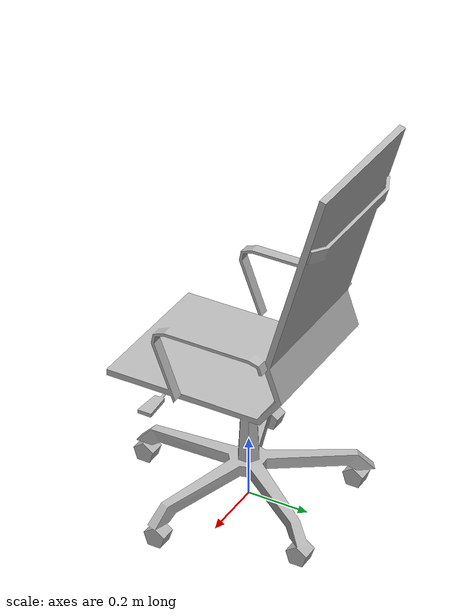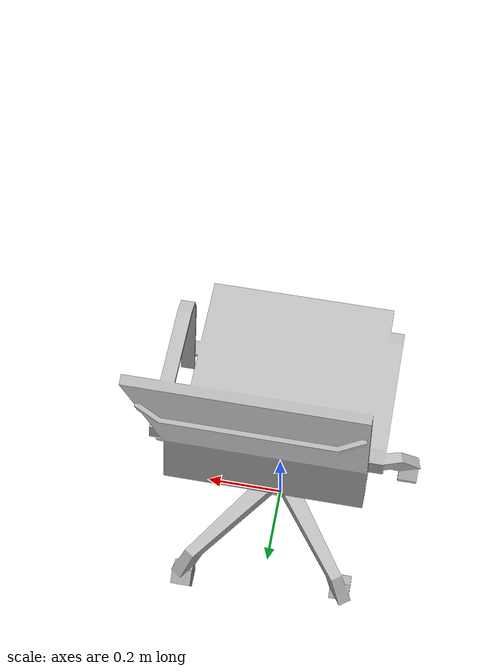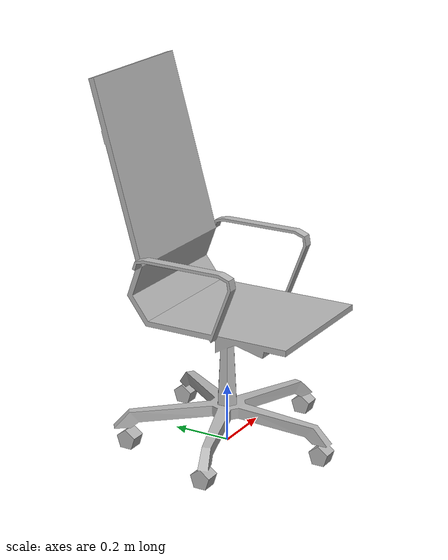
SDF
<?xml version='1.0' encoding='utf-8'?>
<sdf version="1.6">
  <model name="OfficeChairBlue">
   <static>true</static>
    <link name="body">
      <pose>0 0 0 0 0 0</pose>

      <visual name="visual">
        <geometry>
          <mesh>
            <uri>model://OfficeChairBlack/meshes/OfficeChairBlack.obj</uri>
          </mesh>
        </geometry>
      </visual>

      <collision name="collision">
        <geometry>
          <mesh>
            <uri>model://OfficeChairBlack/meshes/OfficeChairBlack_Col.obj</uri>
          </mesh>
        </geometry>
      </collision>

    </link>
  </model>
</sdf>
